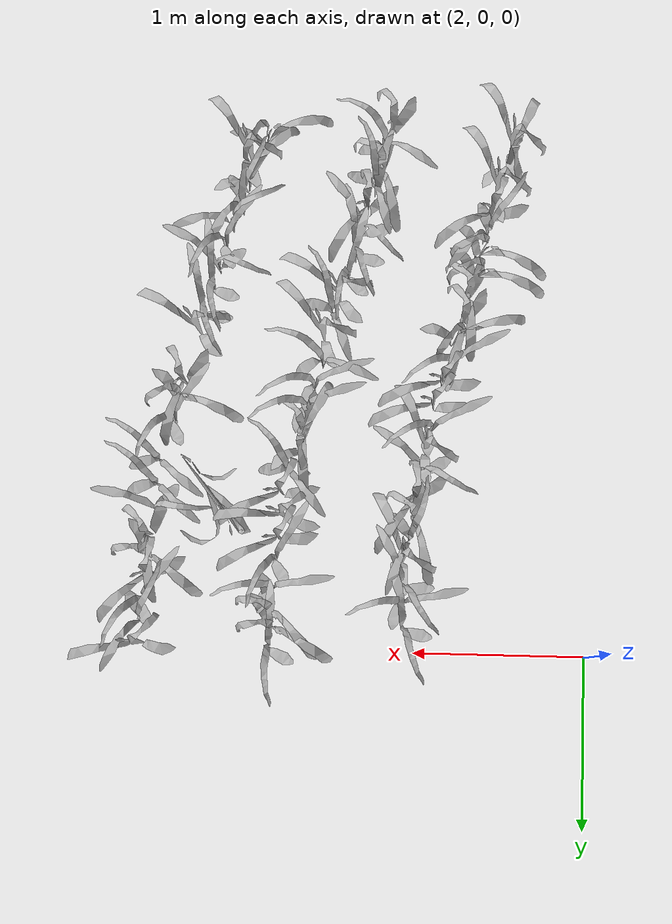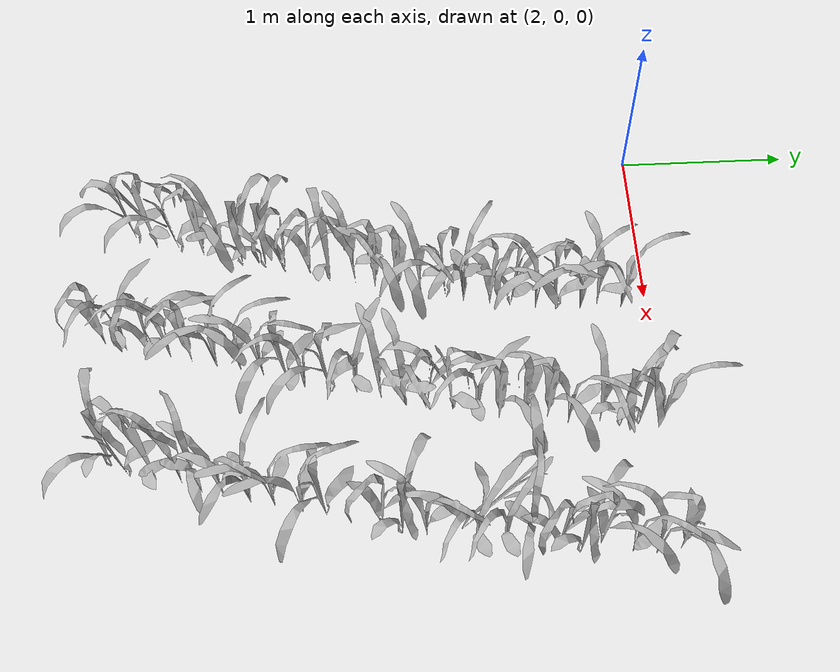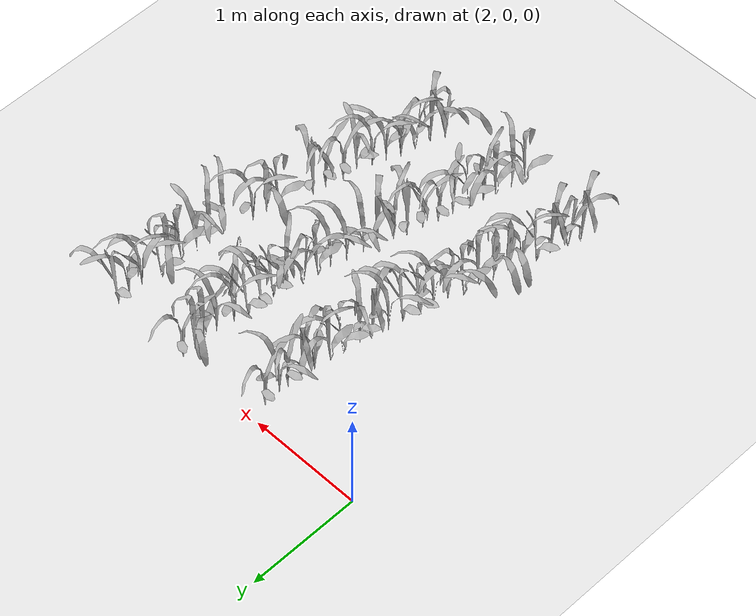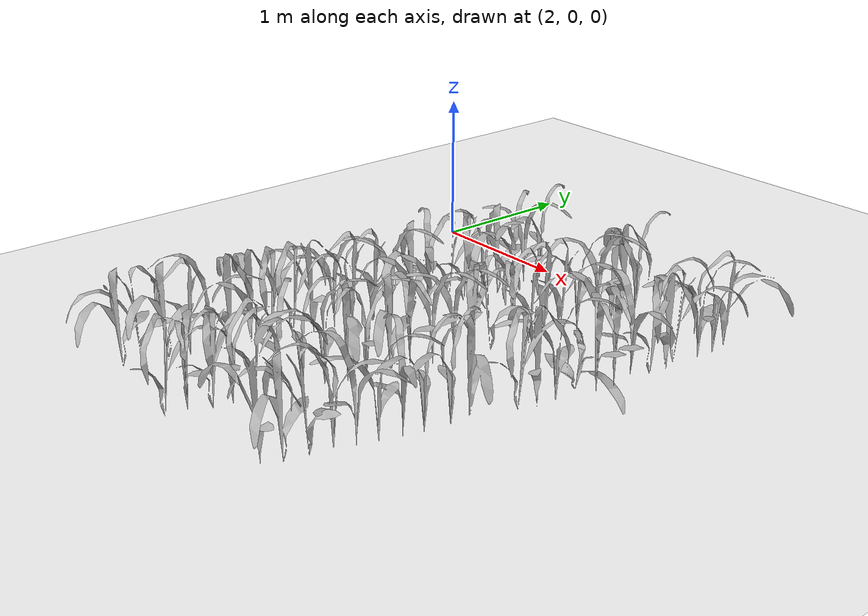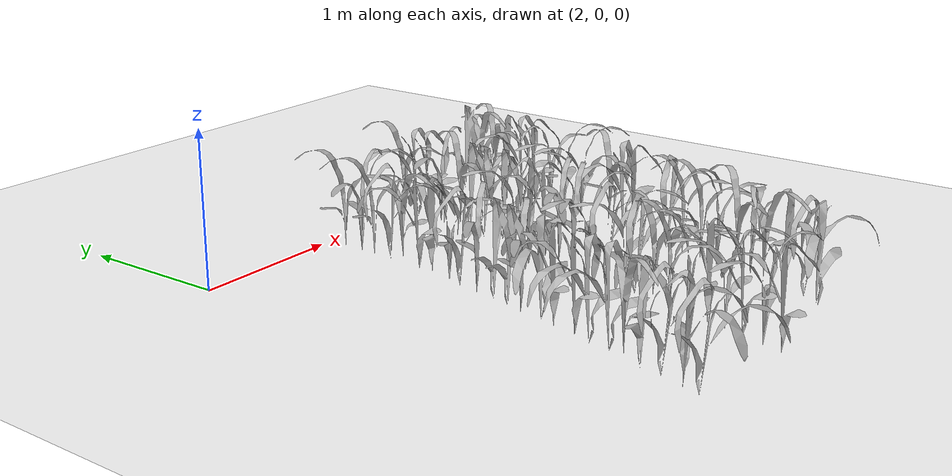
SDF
<sdf version="1.7">
 <world name="default">
  <model name="maize_01_0645">
   <pose>2.47391 -2.99059 -0.000245 -1.2e-05 -1.4e-05 -0.288015</pose>
   <link name="maize_01_link">
    <inertial>
     <pose>0 0 0.01 0 -0 0</pose>
     <mass>0.3</mass>
     <inertia>
      <ixx>0.00334167</ixx>
      <ixy>0</ixy>
      <ixz>0</ixz>
      <iyy>0.00334167</iyy>
      <iyz>0</iyz>
      <izz>1.66667e-05</izz>
     </inertia>
     <pose>0 0 0.1 0 -0 0</pose>
    </inertial>
    <visual name="visual">
     <geometry>
      <mesh><uri>model://maize_01/meshes/maize_01.dae</uri><scale>0.683166 0.683166 0.683166</scale></mesh>
     </geometry>
    </visual>
   </link>
   <static>0</static>
  </model>
  <model name="maize_01_0646">
   <pose>2.50804 -2.87897 -0.000245 -1.2e-05 1.4e-05 -1.16809</pose>
   <link name="maize_01_link">
    <inertial>
     <pose>0 0 0.01 0 -0 0</pose>
     <mass>0.3</mass>
     <inertia>
      <ixx>0.00334167</ixx>
      <ixy>0</ixy>
      <ixz>0</ixz>
      <iyy>0.00334167</iyy>
      <iyz>0</iyz>
      <izz>1.66667e-05</izz>
     </inertia>
     <pose>0 0 0.1 0 -0 0</pose>
    </inertial>
    <visual name="visual">
     <geometry>
      <mesh><uri>model://maize_01/meshes/maize_01.dae</uri><scale>0.683166 0.683166 0.683166</scale></mesh>
     </geometry>
    </visual>
   </link>
   <static>0</static>
  </model>
  <model name="maize_01_0647">
   <pose>2.55788 -2.73225 1e-06 -3e-06 -0.000156 -0.248137</pose>
   <link name="maize_01_link">
    <inertial>
     <pose>0 0 0.01 0 -0 0</pose>
     <mass>0.3</mass>
     <inertia>
      <ixx>0.00334167</ixx>
      <ixy>0</ixy>
      <ixz>0</ixz>
      <iyy>0.00334167</iyy>
      <iyz>0</iyz>
      <izz>1.66667e-05</izz>
     </inertia>
     <pose>0 0 0.1 0 -0 0</pose>
    </inertial>
    <visual name="visual">
     <geometry>
      <mesh><uri>model://maize_01/meshes/maize_01.dae</uri><scale>0.683166 0.683166 0.683166</scale></mesh>
     </geometry>
    </visual>
   </link>
   <static>0</static>
  </model>
  <model name="maize_01_0648">
   <pose>2.58697 -2.59587 1e-06 -0.000156 -3e-06 1.3779</pose>
   <link name="maize_01_link">
    <inertial>
     <pose>0 0 0.01 0 -0 0</pose>
     <mass>0.3</mass>
     <inertia>
      <ixx>0.00334167</ixx>
      <ixy>0</ixy>
      <ixz>0</ixz>
      <iyy>0.00334167</iyy>
      <iyz>0</iyz>
      <izz>1.66667e-05</izz>
     </inertia>
     <pose>0 0 0.1 0 -0 0</pose>
    </inertial>
    <visual name="visual">
     <geometry>
      <mesh><uri>model://maize_01/meshes/maize_01.dae</uri><scale>0.683166 0.683166 0.683166</scale></mesh>
     </geometry>
    </visual>
   </link>
   <static>0</static>
  </model>
  <model name="maize_02_0649">
   <pose>2.62665 -2.47219 -0 -5e-06 2.8e-05 3.04369</pose>
   <link name="maize_02_link">
    <inertial>
     <pose>0 0 0.01 0 -0 0</pose>
     <mass>0.3</mass>
     <inertia>
      <ixx>0.00334167</ixx>
      <ixy>0</ixy>
      <ixz>0</ixz>
      <iyy>0.00334167</iyy>
      <iyz>0</iyz>
      <izz>1.66667e-05</izz>
     </inertia>
     <pose>0 0 0.1 0 -0 0</pose>
    </inertial>
    <visual name="visual">
     <geometry>
      <mesh><uri>model://maize_02/meshes/maize_02.dae</uri><scale>0.683166 0.683166 0.683166</scale></mesh>
     </geometry>
    </visual>
   </link>
   <static>0</static>
  </model>
  <model name="maize_01_0650">
   <pose>2.66848 -2.35744 -1e-06 6e-06 -8.6e-05 -2.79073</pose>
   <link name="maize_01_link">
    <inertial>
     <pose>0 0 0.01 0 -0 0</pose>
     <mass>0.3</mass>
     <inertia>
      <ixx>0.00334167</ixx>
      <ixy>0</ixy>
      <ixz>0</ixz>
      <iyy>0.00334167</iyy>
      <iyz>0</iyz>
      <izz>1.66667e-05</izz>
     </inertia>
     <pose>0 0 0.1 0 -0 0</pose>
    </inertial>
    <visual name="visual">
     <geometry>
      <mesh><uri>model://maize_01/meshes/maize_01.dae</uri><scale>0.683166 0.683166 0.683166</scale></mesh>
     </geometry>
    </visual>
   </link>
   <static>0</static>
  </model>
  <model name="maize_01_0651">
   <pose>2.69057 -2.2193 -0 -2.8e-05 -5e-06 -2.70683</pose>
   <link name="maize_01_link">
    <inertial>
     <pose>0 0 0.01 0 -0 0</pose>
     <mass>0.3</mass>
     <inertia>
      <ixx>0.00334167</ixx>
      <ixy>0</ixy>
      <ixz>0</ixz>
      <iyy>0.00334167</iyy>
      <iyz>0</iyz>
      <izz>1.66667e-05</izz>
     </inertia>
     <pose>0 0 0.1 0 -0 0</pose>
    </inertial>
    <visual name="visual">
     <geometry>
      <mesh><uri>model://maize_01/meshes/maize_01.dae</uri><scale>0.683166 0.683166 0.683166</scale></mesh>
     </geometry>
    </visual>
   </link>
   <static>0</static>
  </model>
  <model name="maize_01_0652">
   <pose>2.73337 -2.10397 -0 -4.8e-05 6e-06 2.39037</pose>
   <link name="maize_01_link">
    <inertial>
     <pose>0 0 0.01 0 -0 0</pose>
     <mass>0.3</mass>
     <inertia>
      <ixx>0.00334167</ixx>
      <ixy>0</ixy>
      <ixz>0</ixz>
      <iyy>0.00334167</iyy>
      <iyz>0</iyz>
      <izz>1.66667e-05</izz>
     </inertia>
     <pose>0 0 0.1 0 -0 0</pose>
    </inertial>
    <visual name="visual">
     <geometry>
      <mesh><uri>model://maize_01/meshes/maize_01.dae</uri><scale>0.683166 0.683166 0.683166</scale></mesh>
     </geometry>
    </visual>
   </link>
   <static>0</static>
  </model>
  <model name="maize_01_0653">
   <pose>2.75227 -1.9554 1e-06 3e-06 -0.000156 2.13792</pose>
   <link name="maize_01_link">
    <inertial>
     <pose>0 0 0.01 0 -0 0</pose>
     <mass>0.3</mass>
     <inertia>
      <ixx>0.00334167</ixx>
      <ixy>0</ixy>
      <ixz>0</ixz>
      <iyy>0.00334167</iyy>
      <iyz>0</iyz>
      <izz>1.66667e-05</izz>
     </inertia>
     <pose>0 0 0.1 0 -0 0</pose>
    </inertial>
    <visual name="visual">
     <geometry>
      <mesh><uri>model://maize_01/meshes/maize_01.dae</uri><scale>0.683166 0.683166 0.683166</scale></mesh>
     </geometry>
    </visual>
   </link>
   <static>0</static>
  </model>
  <model name="maize_01_0654">
   <pose>2.80399 -1.8354 -0 -5e-06 -2.8e-05 -2.12283</pose>
   <link name="maize_01_link">
    <inertial>
     <pose>0 0 0.01 0 -0 0</pose>
     <mass>0.3</mass>
     <inertia>
      <ixx>0.00334167</ixx>
      <ixy>0</ixy>
      <ixz>0</ixz>
      <iyy>0.00334167</iyy>
      <iyz>0</iyz>
      <izz>1.66667e-05</izz>
     </inertia>
     <pose>0 0 0.1 0 -0 0</pose>
    </inertial>
    <visual name="visual">
     <geometry>
      <mesh><uri>model://maize_01/meshes/maize_01.dae</uri><scale>0.683166 0.683166 0.683166</scale></mesh>
     </geometry>
    </visual>
   </link>
   <static>0</static>
  </model>
  <model name="maize_02_0655">
   <pose>2.81904 -1.68879 -0 -6e-06 -4.8e-05 -0.498576</pose>
   <link name="maize_02_link">
    <inertial>
     <pose>0 0 0.01 0 -0 0</pose>
     <mass>0.3</mass>
     <inertia>
      <ixx>0.00334167</ixx>
      <ixy>0</ixy>
      <ixz>0</ixz>
      <iyy>0.00334167</iyy>
      <iyz>0</iyz>
      <izz>1.66667e-05</izz>
     </inertia>
     <pose>0 0 0.1 0 -0 0</pose>
    </inertial>
    <visual name="visual">
     <geometry>
      <mesh><uri>model://maize_02/meshes/maize_02.dae</uri><scale>0.683166 0.683166 0.683166</scale></mesh>
     </geometry>
    </visual>
   </link>
   <static>0</static>
  </model>
  <model name="maize_01_0656">
   <pose>2.85694 -1.5755 -0 -5e-06 -2.8e-05 1.17843</pose>
   <link name="maize_01_link">
    <inertial>
     <pose>0 0 0.01 0 -0 0</pose>
     <mass>0.3</mass>
     <inertia>
      <ixx>0.00334167</ixx>
      <ixy>0</ixy>
      <ixz>0</ixz>
      <iyy>0.00334167</iyy>
      <iyz>0</iyz>
      <izz>1.66667e-05</izz>
     </inertia>
     <pose>0 0 0.1 0 -0 0</pose>
    </inertial>
    <visual name="visual">
     <geometry>
      <mesh><uri>model://maize_01/meshes/maize_01.dae</uri><scale>0.683166 0.683166 0.683166</scale></mesh>
     </geometry>
    </visual>
   </link>
   <static>0</static>
  </model>
  <model name="maize_01_0657">
   <pose>2.90529 -1.44266 -0 2.8e-05 5e-06 1.13864</pose>
   <link name="maize_01_link">
    <inertial>
     <pose>0 0 0.01 0 -0 0</pose>
     <mass>0.3</mass>
     <inertia>
      <ixx>0.00334167</ixx>
      <ixy>0</ixy>
      <ixz>0</ixz>
      <iyy>0.00334167</iyy>
      <iyz>0</iyz>
      <izz>1.66667e-05</izz>
     </inertia>
     <pose>0 0 0.1 0 -0 0</pose>
    </inertial>
    <visual name="visual">
     <geometry>
      <mesh><uri>model://maize_01/meshes/maize_01.dae</uri><scale>0.683166 0.683166 0.683166</scale></mesh>
     </geometry>
    </visual>
   </link>
   <static>0</static>
  </model>
  <model name="maize_02_0658">
   <pose>2.92102 -1.30557 -0 2.8e-05 -5e-06 -0.524198</pose>
   <link name="maize_02_link">
    <inertial>
     <pose>0 0 0.01 0 -0 0</pose>
     <mass>0.3</mass>
     <inertia>
      <ixx>0.00334167</ixx>
      <ixy>0</ixy>
      <ixz>0</ixz>
      <iyy>0.00334167</iyy>
      <iyz>0</iyz>
      <izz>1.66667e-05</izz>
     </inertia>
     <pose>0 0 0.1 0 -0 0</pose>
    </inertial>
    <visual name="visual">
     <geometry>
      <mesh><uri>model://maize_02/meshes/maize_02.dae</uri><scale>0.683166 0.683166 0.683166</scale></mesh>
     </geometry>
    </visual>
   </link>
   <static>0</static>
  </model>
  <model name="maize_01_0659">
   <pose>2.95058 -1.16104 -0.000245 1.2e-05 -1.4e-05 -0.324395</pose>
   <link name="maize_01_link">
    <inertial>
     <pose>0 0 0.01 0 -0 0</pose>
     <mass>0.3</mass>
     <inertia>
      <ixx>0.00334167</ixx>
      <ixy>0</ixy>
      <ixz>0</ixz>
      <iyy>0.00334167</iyy>
      <iyz>0</iyz>
      <izz>1.66667e-05</izz>
     </inertia>
     <pose>0 0 0.1 0 -0 0</pose>
    </inertial>
    <visual name="visual">
     <geometry>
      <mesh><uri>model://maize_01/meshes/maize_01.dae</uri><scale>0.683166 0.683166 0.683166</scale></mesh>
     </geometry>
    </visual>
   </link>
   <static>0</static>
  </model>
  <model name="maize_02_0660">
   <pose>2.98062 -1.05942 -0 2.8e-05 -5e-06 1.56657</pose>
   <link name="maize_02_link">
    <inertial>
     <pose>0 0 0.01 0 -0 0</pose>
     <mass>0.3</mass>
     <inertia>
      <ixx>0.00334167</ixx>
      <ixy>0</ixy>
      <ixz>0</ixz>
      <iyy>0.00334167</iyy>
      <iyz>0</iyz>
      <izz>1.66667e-05</izz>
     </inertia>
     <pose>0 0 0.1 0 -0 0</pose>
    </inertial>
    <visual name="visual">
     <geometry>
      <mesh><uri>model://maize_02/meshes/maize_02.dae</uri><scale>0.683166 0.683166 0.683166</scale></mesh>
     </geometry>
    </visual>
   </link>
   <static>0</static>
  </model>
  <model name="maize_01_0661">
   <pose>3.01016 -0.908229 1e-06 -3e-06 -0.000156 1.7754</pose>
   <link name="maize_01_link">
    <inertial>
     <pose>0 0 0.01 0 -0 0</pose>
     <mass>0.3</mass>
     <inertia>
      <ixx>0.00334167</ixx>
      <ixy>0</ixy>
      <ixz>0</ixz>
      <iyy>0.00334167</iyy>
      <iyz>0</iyz>
      <izz>1.66667e-05</izz>
     </inertia>
     <pose>0 0 0.1 0 -0 0</pose>
    </inertial>
    <visual name="visual">
     <geometry>
      <mesh><uri>model://maize_01/meshes/maize_01.dae</uri><scale>0.683166 0.683166 0.683166</scale></mesh>
     </geometry>
    </visual>
   </link>
   <static>0</static>
  </model>
  <model name="maize_01_0662">
   <pose>3.02877 -0.788028 -0 5e-06 -2.8e-05 2.59903</pose>
   <link name="maize_01_link">
    <inertial>
     <pose>0 0 0.01 0 -0 0</pose>
     <mass>0.3</mass>
     <inertia>
      <ixx>0.00334167</ixx>
      <ixy>0</ixy>
      <ixz>0</ixz>
      <iyy>0.00334167</iyy>
      <iyz>0</iyz>
      <izz>1.66667e-05</izz>
     </inertia>
     <pose>0 0 0.1 0 -0 0</pose>
    </inertial>
    <visual name="visual">
     <geometry>
      <mesh><uri>model://maize_01/meshes/maize_01.dae</uri><scale>0.683166 0.683166 0.683166</scale></mesh>
     </geometry>
    </visual>
   </link>
   <static>0</static>
  </model>
  <model name="maize_02_0663">
   <pose>3.05144 -0.643482 -1e-06 8.6e-05 -6e-06 -2.88875</pose>
   <link name="maize_02_link">
    <inertial>
     <pose>0 0 0.01 0 -0 0</pose>
     <mass>0.3</mass>
     <inertia>
      <ixx>0.00334167</ixx>
      <ixy>0</ixy>
      <ixz>0</ixz>
      <iyy>0.00334167</iyy>
      <iyz>0</iyz>
      <izz>1.66667e-05</izz>
     </inertia>
     <pose>0 0 0.1 0 -0 0</pose>
    </inertial>
    <visual name="visual">
     <geometry>
      <mesh><uri>model://maize_02/meshes/maize_02.dae</uri><scale>0.683166 0.683166 0.683166</scale></mesh>
     </geometry>
    </visual>
   </link>
   <static>0</static>
  </model>
  <model name="maize_01_0664">
   <pose>3.06642 -0.528044 -0 2.8e-05 -5e-06 -0.338148</pose>
   <link name="maize_01_link">
    <inertial>
     <pose>0 0 0.01 0 -0 0</pose>
     <mass>0.3</mass>
     <inertia>
      <ixx>0.00334167</ixx>
      <ixy>0</ixy>
      <ixz>0</ixz>
      <iyy>0.00334167</iyy>
      <iyz>0</iyz>
      <izz>1.66667e-05</izz>
     </inertia>
     <pose>0 0 0.1 0 -0 0</pose>
    </inertial>
    <visual name="visual">
     <geometry>
      <mesh><uri>model://maize_01/meshes/maize_01.dae</uri><scale>0.683166 0.683166 0.683166</scale></mesh>
     </geometry>
    </visual>
   </link>
   <static>0</static>
  </model>
  <model name="maize_02_0665">
   <pose>3.07352 -0.387233 -1e-06 8.9e-05 -6e-06 1.09519</pose>
   <link name="maize_02_link">
    <inertial>
     <pose>0 0 0.01 0 -0 0</pose>
     <mass>0.3</mass>
     <inertia>
      <ixx>0.00334167</ixx>
      <ixy>0</ixy>
      <ixz>0</ixz>
      <iyy>0.00334167</iyy>
      <iyz>0</iyz>
      <izz>1.66667e-05</izz>
     </inertia>
     <pose>0 0 0.1 0 -0 0</pose>
    </inertial>
    <visual name="visual">
     <geometry>
      <mesh><uri>model://maize_02/meshes/maize_02.dae</uri><scale>0.683166 0.683166 0.683166</scale></mesh>
     </geometry>
    </visual>
   </link>
   <static>0</static>
  </model>
  <model name="maize_02_0666">
   <pose>3.06526 -0.288751 -1e-06 -8.9e-05 -6e-06 -0.767193</pose>
   <link name="maize_02_link">
    <inertial>
     <pose>0 0 0.01 0 -0 0</pose>
     <mass>0.3</mass>
     <inertia>
      <ixx>0.00334167</ixx>
      <ixy>0</ixy>
      <ixz>0</ixz>
      <iyy>0.00334167</iyy>
      <iyz>0</iyz>
      <izz>1.66667e-05</izz>
     </inertia>
     <pose>0 0 0.1 0 -0 0</pose>
    </inertial>
    <visual name="visual">
     <geometry>
      <mesh><uri>model://maize_02/meshes/maize_02.dae</uri><scale>0.683166 0.683166 0.683166</scale></mesh>
     </geometry>
    </visual>
   </link>
   <static>0</static>
  </model>
  <model name="maize_02_0667">
   <pose>3.07101 -0.146767 -1e-06 6e-06 -8.3e-05 0.841255</pose>
   <link name="maize_02_link">
    <inertial>
     <pose>0 0 0.01 0 -0 0</pose>
     <mass>0.3</mass>
     <inertia>
      <ixx>0.00334167</ixx>
      <ixy>0</ixy>
      <ixz>0</ixz>
      <iyy>0.00334167</iyy>
      <iyz>0</iyz>
      <izz>1.66667e-05</izz>
     </inertia>
     <pose>0 0 0.1 0 -0 0</pose>
    </inertial>
    <visual name="visual">
     <geometry>
      <mesh><uri>model://maize_02/meshes/maize_02.dae</uri><scale>0.683166 0.683166 0.683166</scale></mesh>
     </geometry>
    </visual>
   </link>
   <static>0</static>
  </model>
  <model name="maize_01_0721">
   <pose>3.18786 -3.11386 1e-06 0.000156 3e-06 2.14138</pose>
   <link name="maize_01_link">
    <inertial>
     <pose>0 0 0.01 0 -0 0</pose>
     <mass>0.3</mass>
     <inertia>
      <ixx>0.00334167</ixx>
      <ixy>0</ixy>
      <ixz>0</ixz>
      <iyy>0.00334167</iyy>
      <iyz>0</iyz>
      <izz>1.66667e-05</izz>
     </inertia>
     <pose>0 0 0.1 0 -0 0</pose>
    </inertial>
    <visual name="visual">
     <geometry>
      <mesh><uri>model://maize_01/meshes/maize_01.dae</uri><scale>0.683166 0.683166 0.683166</scale></mesh>
     </geometry>
    </visual>
   </link>
   <static>0</static>
  </model>
  <model name="maize_02_0722">
   <pose>3.22432 -2.99179 -0 -5e-06 -2.8e-05 -1.56354</pose>
   <link name="maize_02_link">
    <inertial>
     <pose>0 0 0.01 0 -0 0</pose>
     <mass>0.3</mass>
     <inertia>
      <ixx>0.00334167</ixx>
      <ixy>0</ixy>
      <ixz>0</ixz>
      <iyy>0.00334167</iyy>
      <iyz>0</iyz>
      <izz>1.66667e-05</izz>
     </inertia>
     <pose>0 0 0.1 0 -0 0</pose>
    </inertial>
    <visual name="visual">
     <geometry>
      <mesh><uri>model://maize_02/meshes/maize_02.dae</uri><scale>0.683166 0.683166 0.683166</scale></mesh>
     </geometry>
    </visual>
   </link>
   <static>0</static>
  </model>
  <model name="maize_01_0723">
   <pose>3.2635 -2.85219 -0.000245 1.2e-05 -1.4e-05 2.61262</pose>
   <link name="maize_01_link">
    <inertial>
     <pose>0 0 0.01 0 -0 0</pose>
     <mass>0.3</mass>
     <inertia>
      <ixx>0.00334167</ixx>
      <ixy>0</ixy>
      <ixz>0</ixz>
      <iyy>0.00334167</iyy>
      <iyz>0</iyz>
      <izz>1.66667e-05</izz>
     </inertia>
     <pose>0 0 0.1 0 -0 0</pose>
    </inertial>
    <visual name="visual">
     <geometry>
      <mesh><uri>model://maize_01/meshes/maize_01.dae</uri><scale>0.683166 0.683166 0.683166</scale></mesh>
     </geometry>
    </visual>
   </link>
   <static>0</static>
  </model>
  <model name="maize_02_0724">
   <pose>3.28693 -2.73572 1e-06 -3e-06 0.000156 -2.28261</pose>
   <link name="maize_02_link">
    <inertial>
     <pose>0 0 0.01 0 -0 0</pose>
     <mass>0.3</mass>
     <inertia>
      <ixx>0.00334167</ixx>
      <ixy>0</ixy>
      <ixz>0</ixz>
      <iyy>0.00334167</iyy>
      <iyz>0</iyz>
      <izz>1.66667e-05</izz>
     </inertia>
     <pose>0 0 0.1 0 -0 0</pose>
    </inertial>
    <visual name="visual">
     <geometry>
      <mesh><uri>model://maize_02/meshes/maize_02.dae</uri><scale>0.683166 0.683166 0.683166</scale></mesh>
     </geometry>
    </visual>
   </link>
   <static>0</static>
  </model>
  <model name="maize_01_0725">
   <pose>3.32518 -2.61409 -0 -5e-06 -2.8e-05 1.80027</pose>
   <link name="maize_01_link">
    <inertial>
     <pose>0 0 0.01 0 -0 0</pose>
     <mass>0.3</mass>
     <inertia>
      <ixx>0.00334167</ixx>
      <ixy>0</ixy>
      <ixz>0</ixz>
      <iyy>0.00334167</iyy>
      <iyz>0</iyz>
      <izz>1.66667e-05</izz>
     </inertia>
     <pose>0 0 0.1 0 -0 0</pose>
    </inertial>
    <visual name="visual">
     <geometry>
      <mesh><uri>model://maize_01/meshes/maize_01.dae</uri><scale>0.683166 0.683166 0.683166</scale></mesh>
     </geometry>
    </visual>
   </link>
   <static>0</static>
  </model>
  <model name="maize_02_0726">
   <pose>3.36149 -2.47074 -0.000245 -1.2e-05 1.4e-05 1.26536</pose>
   <link name="maize_02_link">
    <inertial>
     <pose>0 0 0.01 0 -0 0</pose>
     <mass>0.3</mass>
     <inertia>
      <ixx>0.00334167</ixx>
      <ixy>0</ixy>
      <ixz>0</ixz>
      <iyy>0.00334167</iyy>
      <iyz>0</iyz>
      <izz>1.66667e-05</izz>
     </inertia>
     <pose>0 0 0.1 0 -0 0</pose>
    </inertial>
    <visual name="visual">
     <geometry>
      <mesh><uri>model://maize_02/meshes/maize_02.dae</uri><scale>0.683166 0.683166 0.683166</scale></mesh>
     </geometry>
    </visual>
   </link>
   <static>0</static>
  </model>
  <model name="maize_02_0727">
   <pose>3.38985 -2.33503 -0.000245 1.4e-05 1.2e-05 0.820451</pose>
   <link name="maize_02_link">
    <inertial>
     <pose>0 0 0.01 0 -0 0</pose>
     <mass>0.3</mass>
     <inertia>
      <ixx>0.00334167</ixx>
      <ixy>0</ixy>
      <ixz>0</ixz>
      <iyy>0.00334167</iyy>
      <iyz>0</iyz>
      <izz>1.66667e-05</izz>
     </inertia>
     <pose>0 0 0.1 0 -0 0</pose>
    </inertial>
    <visual name="visual">
     <geometry>
      <mesh><uri>model://maize_02/meshes/maize_02.dae</uri><scale>0.683166 0.683166 0.683166</scale></mesh>
     </geometry>
    </visual>
   </link>
   <static>0</static>
  </model>
  <model name="maize_02_0728">
   <pose>3.43326 -2.20604 -1e-06 -8.6e-05 6e-06 0.338388</pose>
   <link name="maize_02_link">
    <inertial>
     <pose>0 0 0.01 0 -0 0</pose>
     <mass>0.3</mass>
     <inertia>
      <ixx>0.00334167</ixx>
      <ixy>0</ixy>
      <ixz>0</ixz>
      <iyy>0.00334167</iyy>
      <iyz>0</iyz>
      <izz>1.66667e-05</izz>
     </inertia>
     <pose>0 0 0.1 0 -0 0</pose>
    </inertial>
    <visual name="visual">
     <geometry>
      <mesh><uri>model://maize_02/meshes/maize_02.dae</uri><scale>0.683166 0.683166 0.683166</scale></mesh>
     </geometry>
    </visual>
   </link>
   <static>0</static>
  </model>
  <model name="maize_01_0729">
   <pose>3.46877 -2.06901 -0 5e-06 -2.8e-05 0.273221</pose>
   <link name="maize_01_link">
    <inertial>
     <pose>0 0 0.01 0 -0 0</pose>
     <mass>0.3</mass>
     <inertia>
      <ixx>0.00334167</ixx>
      <ixy>0</ixy>
      <ixz>0</ixz>
      <iyy>0.00334167</iyy>
      <iyz>0</iyz>
      <izz>1.66667e-05</izz>
     </inertia>
     <pose>0 0 0.1 0 -0 0</pose>
    </inertial>
    <visual name="visual">
     <geometry>
      <mesh><uri>model://maize_01/meshes/maize_01.dae</uri><scale>0.683166 0.683166 0.683166</scale></mesh>
     </geometry>
    </visual>
   </link>
   <static>0</static>
  </model>
  <model name="maize_02_0730">
   <pose>3.52312 -1.97062 -0 -2.8e-05 5e-06 -2.19573</pose>
   <link name="maize_02_link">
    <inertial>
     <pose>0 0 0.01 0 -0 0</pose>
     <mass>0.3</mass>
     <inertia>
      <ixx>0.00334167</ixx>
      <ixy>0</ixy>
      <ixz>0</ixz>
      <iyy>0.00334167</iyy>
      <iyz>0</iyz>
      <izz>1.66667e-05</izz>
     </inertia>
     <pose>0 0 0.1 0 -0 0</pose>
    </inertial>
    <visual name="visual">
     <geometry>
      <mesh><uri>model://maize_02/meshes/maize_02.dae</uri><scale>0.683166 0.683166 0.683166</scale></mesh>
     </geometry>
    </visual>
   </link>
   <static>0</static>
  </model>
  <model name="maize_01_0731">
   <pose>3.55863 -1.82457 -0 5e-06 2.8e-05 -0.034143</pose>
   <link name="maize_01_link">
    <inertial>
     <pose>0 0 0.01 0 -0 0</pose>
     <mass>0.3</mass>
     <inertia>
      <ixx>0.00334167</ixx>
      <ixy>0</ixy>
      <ixz>0</ixz>
      <iyy>0.00334167</iyy>
      <iyz>0</iyz>
      <izz>1.66667e-05</izz>
     </inertia>
     <pose>0 0 0.1 0 -0 0</pose>
    </inertial>
    <visual name="visual">
     <geometry>
      <mesh><uri>model://maize_01/meshes/maize_01.dae</uri><scale>0.683166 0.683166 0.683166</scale></mesh>
     </geometry>
    </visual>
   </link>
   <static>0</static>
  </model>
  <model name="maize_02_0732">
   <pose>3.56964 -1.6806 -0 -2.8e-05 -5e-06 -1.38487</pose>
   <link name="maize_02_link">
    <inertial>
     <pose>0 0 0.01 0 -0 0</pose>
     <mass>0.3</mass>
     <inertia>
      <ixx>0.00334167</ixx>
      <ixy>0</ixy>
      <ixz>0</ixz>
      <iyy>0.00334167</iyy>
      <iyz>0</iyz>
      <izz>1.66667e-05</izz>
     </inertia>
     <pose>0 0 0.1 0 -0 0</pose>
    </inertial>
    <visual name="visual">
     <geometry>
      <mesh><uri>model://maize_02/meshes/maize_02.dae</uri><scale>0.683166 0.683166 0.683166</scale></mesh>
     </geometry>
    </visual>
   </link>
   <static>0</static>
  </model>
  <model name="maize_02_0733">
   <pose>3.61522 -1.54676 -1e-06 -6e-06 8.9e-05 -0.648513</pose>
   <link name="maize_02_link">
    <inertial>
     <pose>0 0 0.01 0 -0 0</pose>
     <mass>0.3</mass>
     <inertia>
      <ixx>0.00334167</ixx>
      <ixy>0</ixy>
      <ixz>0</ixz>
      <iyy>0.00334167</iyy>
      <iyz>0</iyz>
      <izz>1.66667e-05</izz>
     </inertia>
     <pose>0 0 0.1 0 -0 0</pose>
    </inertial>
    <visual name="visual">
     <geometry>
      <mesh><uri>model://maize_02/meshes/maize_02.dae</uri><scale>0.683166 0.683166 0.683166</scale></mesh>
     </geometry>
    </visual>
   </link>
   <static>0</static>
  </model>
  <model name="maize_02_0734">
   <pose>3.65855 -1.41467 -0.000245 -1.4e-05 1.2e-05 -0.662627</pose>
   <link name="maize_02_link">
    <inertial>
     <pose>0 0 0.01 0 -0 0</pose>
     <mass>0.3</mass>
     <inertia>
      <ixx>0.00334167</ixx>
      <ixy>0</ixy>
      <ixz>0</ixz>
      <iyy>0.00334167</iyy>
      <iyz>0</iyz>
      <izz>1.66667e-05</izz>
     </inertia>
     <pose>0 0 0.1 0 -0 0</pose>
    </inertial>
    <visual name="visual">
     <geometry>
      <mesh><uri>model://maize_02/meshes/maize_02.dae</uri><scale>0.683166 0.683166 0.683166</scale></mesh>
     </geometry>
    </visual>
   </link>
   <static>0</static>
  </model>
  <model name="maize_01_0735">
   <pose>3.68213 -1.29892 -1e-06 -8.9e-05 6e-06 2.42816</pose>
   <link name="maize_01_link">
    <inertial>
     <pose>0 0 0.01 0 -0 0</pose>
     <mass>0.3</mass>
     <inertia>
      <ixx>0.00334167</ixx>
      <ixy>0</ixy>
      <ixz>0</ixz>
      <iyy>0.00334167</iyy>
      <iyz>0</iyz>
      <izz>1.66667e-05</izz>
     </inertia>
     <pose>0 0 0.1 0 -0 0</pose>
    </inertial>
    <visual name="visual">
     <geometry>
      <mesh><uri>model://maize_01/meshes/maize_01.dae</uri><scale>0.683166 0.683166 0.683166</scale></mesh>
     </geometry>
    </visual>
   </link>
   <static>0</static>
  </model>
  <model name="maize_01_0736">
   <pose>3.69361 -1.15596 -1e-06 -8.9e-05 6e-06 -1.22579</pose>
   <link name="maize_01_link">
    <inertial>
     <pose>0 0 0.01 0 -0 0</pose>
     <mass>0.3</mass>
     <inertia>
      <ixx>0.00334167</ixx>
      <ixy>0</ixy>
      <ixz>0</ixz>
      <iyy>0.00334167</iyy>
      <iyz>0</iyz>
      <izz>1.66667e-05</izz>
     </inertia>
     <pose>0 0 0.1 0 -0 0</pose>
    </inertial>
    <visual name="visual">
     <geometry>
      <mesh><uri>model://maize_01/meshes/maize_01.dae</uri><scale>0.683166 0.683166 0.683166</scale></mesh>
     </geometry>
    </visual>
   </link>
   <static>0</static>
  </model>
  <model name="maize_02_0737">
   <pose>3.74613 -1.0247 -0.000245 -1.2e-05 1.4e-05 -1.87852</pose>
   <link name="maize_02_link">
    <inertial>
     <pose>0 0 0.01 0 -0 0</pose>
     <mass>0.3</mass>
     <inertia>
      <ixx>0.00334167</ixx>
      <ixy>0</ixy>
      <ixz>0</ixz>
      <iyy>0.00334167</iyy>
      <iyz>0</iyz>
      <izz>1.66667e-05</izz>
     </inertia>
     <pose>0 0 0.1 0 -0 0</pose>
    </inertial>
    <visual name="visual">
     <geometry>
      <mesh><uri>model://maize_02/meshes/maize_02.dae</uri><scale>0.683166 0.683166 0.683166</scale></mesh>
     </geometry>
    </visual>
   </link>
   <static>0</static>
  </model>
  <model name="maize_01_0738">
   <pose>3.77402 -0.908058 -0 6e-06 -4.8e-05 1.28926</pose>
   <link name="maize_01_link">
    <inertial>
     <pose>0 0 0.01 0 -0 0</pose>
     <mass>0.3</mass>
     <inertia>
      <ixx>0.00334167</ixx>
      <ixy>0</ixy>
      <ixz>0</ixz>
      <iyy>0.00334167</iyy>
      <iyz>0</iyz>
      <izz>1.66667e-05</izz>
     </inertia>
     <pose>0 0 0.1 0 -0 0</pose>
    </inertial>
    <visual name="visual">
     <geometry>
      <mesh><uri>model://maize_01/meshes/maize_01.dae</uri><scale>0.683166 0.683166 0.683166</scale></mesh>
     </geometry>
    </visual>
   </link>
   <static>0</static>
  </model>
  <model name="maize_01_0739">
   <pose>3.75613 -0.767743 1e-06 -3e-06 -0.000156 0.862744</pose>
   <link name="maize_01_link">
    <inertial>
     <pose>0 0 0.01 0 -0 0</pose>
     <mass>0.3</mass>
     <inertia>
      <ixx>0.00334167</ixx>
      <ixy>0</ixy>
      <ixz>0</ixz>
      <iyy>0.00334167</iyy>
      <iyz>0</iyz>
      <izz>1.66667e-05</izz>
     </inertia>
     <pose>0 0 0.1 0 -0 0</pose>
    </inertial>
    <visual name="visual">
     <geometry>
      <mesh><uri>model://maize_01/meshes/maize_01.dae</uri><scale>0.683166 0.683166 0.683166</scale></mesh>
     </geometry>
    </visual>
   </link>
   <static>0</static>
  </model>
  <model name="maize_01_0740">
   <pose>3.776 -0.64239 -0.000245 -1.2e-05 -1.4e-05 1.28361</pose>
   <link name="maize_01_link">
    <inertial>
     <pose>0 0 0.01 0 -0 0</pose>
     <mass>0.3</mass>
     <inertia>
      <ixx>0.00334167</ixx>
      <ixy>0</ixy>
      <ixz>0</ixz>
      <iyy>0.00334167</iyy>
      <iyz>0</iyz>
      <izz>1.66667e-05</izz>
     </inertia>
     <pose>0 0 0.1 0 -0 0</pose>
    </inertial>
    <visual name="visual">
     <geometry>
      <mesh><uri>model://maize_01/meshes/maize_01.dae</uri><scale>0.683166 0.683166 0.683166</scale></mesh>
     </geometry>
    </visual>
   </link>
   <static>0</static>
  </model>
  <model name="maize_02_0741">
   <pose>3.80937 -0.52861 -0 -2.8e-05 -5e-06 0.075303</pose>
   <link name="maize_02_link">
    <inertial>
     <pose>0 0 0.01 0 -0 0</pose>
     <mass>0.3</mass>
     <inertia>
      <ixx>0.00334167</ixx>
      <ixy>0</ixy>
      <ixz>0</ixz>
      <iyy>0.00334167</iyy>
      <iyz>0</iyz>
      <izz>1.66667e-05</izz>
     </inertia>
     <pose>0 0 0.1 0 -0 0</pose>
    </inertial>
    <visual name="visual">
     <geometry>
      <mesh><uri>model://maize_02/meshes/maize_02.dae</uri><scale>0.683166 0.683166 0.683166</scale></mesh>
     </geometry>
    </visual>
   </link>
   <static>0</static>
  </model>
  <model name="maize_02_0742">
   <pose>3.82106 -0.356742 1e-06 3e-06 0.000156 -0.82096</pose>
   <link name="maize_02_link">
    <inertial>
     <pose>0 0 0.01 0 -0 0</pose>
     <mass>0.3</mass>
     <inertia>
      <ixx>0.00334167</ixx>
      <ixy>0</ixy>
      <ixz>0</ixz>
      <iyy>0.00334167</iyy>
      <iyz>0</iyz>
      <izz>1.66667e-05</izz>
     </inertia>
     <pose>0 0 0.1 0 -0 0</pose>
    </inertial>
    <visual name="visual">
     <geometry>
      <mesh><uri>model://maize_02/meshes/maize_02.dae</uri><scale>0.683166 0.683166 0.683166</scale></mesh>
     </geometry>
    </visual>
   </link>
   <static>0</static>
  </model>
  <model name="maize_01_0743">
   <pose>3.84513 -0.246509 -1e-06 -8.3e-05 6e-06 3.12385</pose>
   <link name="maize_01_link">
    <inertial>
     <pose>0 0 0.01 0 -0 0</pose>
     <mass>0.3</mass>
     <inertia>
      <ixx>0.00334167</ixx>
      <ixy>0</ixy>
      <ixz>0</ixz>
      <iyy>0.00334167</iyy>
      <iyz>0</iyz>
      <izz>1.66667e-05</izz>
     </inertia>
     <pose>0 0 0.1 0 -0 0</pose>
    </inertial>
    <visual name="visual">
     <geometry>
      <mesh><uri>model://maize_01/meshes/maize_01.dae</uri><scale>0.683166 0.683166 0.683166</scale></mesh>
     </geometry>
    </visual>
   </link>
   <static>0</static>
  </model>
  <model name="maize_01_0744">
   <pose>3.83893 -0.141967 -0 -2.8e-05 5e-06 -2.87555</pose>
   <link name="maize_01_link">
    <inertial>
     <pose>0 0 0.01 0 -0 0</pose>
     <mass>0.3</mass>
     <inertia>
      <ixx>0.00334167</ixx>
      <ixy>0</ixy>
      <ixz>0</ixz>
      <iyy>0.00334167</iyy>
      <iyz>0</iyz>
      <izz>1.66667e-05</izz>
     </inertia>
     <pose>0 0 0.1 0 -0 0</pose>
    </inertial>
    <visual name="visual">
     <geometry>
      <mesh><uri>model://maize_01/meshes/maize_01.dae</uri><scale>0.683166 0.683166 0.683166</scale></mesh>
     </geometry>
    </visual>
   </link>
   <static>0</static>
  </model>
  <model name="maize_02_0745">
   <pose>3.83527 -0.021631 -0.000245 -1.2e-05 -1.4e-05 0.600821</pose>
   <link name="maize_02_link">
    <inertial>
     <pose>0 0 0.01 0 -0 0</pose>
     <mass>0.3</mass>
     <inertia>
      <ixx>0.00334167</ixx>
      <ixy>0</ixy>
      <ixz>0</ixz>
      <iyy>0.00334167</iyy>
      <iyz>0</iyz>
      <izz>1.66667e-05</izz>
     </inertia>
     <pose>0 0 0.1 0 -0 0</pose>
    </inertial>
    <visual name="visual">
     <geometry>
      <mesh><uri>model://maize_02/meshes/maize_02.dae</uri><scale>0.683166 0.683166 0.683166</scale></mesh>
     </geometry>
    </visual>
   </link>
   <static>0</static>
  </model>
  <model name="maize_01_0799">
   <pose>3.95339 -2.99376 -0 -5e-06 -2.8e-05 -2.13205</pose>
   <link name="maize_01_link">
    <inertial>
     <pose>0 0 0.01 0 -0 0</pose>
     <mass>0.3</mass>
     <inertia>
      <ixx>0.00334167</ixx>
      <ixy>0</ixy>
      <ixz>0</ixz>
      <iyy>0.00334167</iyy>
      <iyz>0</iyz>
      <izz>1.66667e-05</izz>
     </inertia>
     <pose>0 0 0.1 0 -0 0</pose>
    </inertial>
    <visual name="visual">
     <geometry>
      <mesh><uri>model://maize_01/meshes/maize_01.dae</uri><scale>0.683166 0.683166 0.683166</scale></mesh>
     </geometry>
    </visual>
   </link>
   <static>0</static>
  </model>
  <model name="maize_01_0800">
   <pose>4.01823 -2.89609 1e-06 0.000156 3e-06 -0.125834</pose>
   <link name="maize_01_link">
    <inertial>
     <pose>0 0 0.01 0 -0 0</pose>
     <mass>0.3</mass>
     <inertia>
      <ixx>0.00334167</ixx>
      <ixy>0</ixy>
      <ixz>0</ixz>
      <iyy>0.00334167</iyy>
      <iyz>0</iyz>
      <izz>1.66667e-05</izz>
     </inertia>
     <pose>0 0 0.1 0 -0 0</pose>
    </inertial>
    <visual name="visual">
     <geometry>
      <mesh><uri>model://maize_01/meshes/maize_01.dae</uri><scale>0.683166 0.683166 0.683166</scale></mesh>
     </geometry>
    </visual>
   </link>
   <static>0</static>
  </model>
  <model name="maize_01_0801">
   <pose>4.04417 -2.74889 -1e-06 -8.6e-05 6e-06 -1.581</pose>
   <link name="maize_01_link">
    <inertial>
     <pose>0 0 0.01 0 -0 0</pose>
     <mass>0.3</mass>
     <inertia>
      <ixx>0.00334167</ixx>
      <ixy>0</ixy>
      <ixz>0</ixz>
      <iyy>0.00334167</iyy>
      <iyz>0</iyz>
      <izz>1.66667e-05</izz>
     </inertia>
     <pose>0 0 0.1 0 -0 0</pose>
    </inertial>
    <visual name="visual">
     <geometry>
      <mesh><uri>model://maize_01/meshes/maize_01.dae</uri><scale>0.683166 0.683166 0.683166</scale></mesh>
     </geometry>
    </visual>
   </link>
   <static>0</static>
  </model>
  <model name="maize_02_0802">
   <pose>4.07383 -2.61137 -0 2.8e-05 -5e-06 -3.04735</pose>
   <link name="maize_02_link">
    <inertial>
     <pose>0 0 0.01 0 -0 0</pose>
     <mass>0.3</mass>
     <inertia>
      <ixx>0.00334167</ixx>
      <ixy>0</ixy>
      <ixz>0</ixz>
      <iyy>0.00334167</iyy>
      <iyz>0</iyz>
      <izz>1.66667e-05</izz>
     </inertia>
     <pose>0 0 0.1 0 -0 0</pose>
    </inertial>
    <visual name="visual">
     <geometry>
      <mesh><uri>model://maize_02/meshes/maize_02.dae</uri><scale>0.683166 0.683166 0.683166</scale></mesh>
     </geometry>
    </visual>
   </link>
   <static>0</static>
  </model>
  <model name="maize_02_0803">
   <pose>4.13123 -2.50279 -0 5e-06 2.8e-05 2.4977</pose>
   <link name="maize_02_link">
    <inertial>
     <pose>0 0 0.01 0 -0 0</pose>
     <mass>0.3</mass>
     <inertia>
      <ixx>0.00334167</ixx>
      <ixy>0</ixy>
      <ixz>0</ixz>
      <iyy>0.00334167</iyy>
      <iyz>0</iyz>
      <izz>1.66667e-05</izz>
     </inertia>
     <pose>0 0 0.1 0 -0 0</pose>
    </inertial>
    <visual name="visual">
     <geometry>
      <mesh><uri>model://maize_02/meshes/maize_02.dae</uri><scale>0.683166 0.683166 0.683166</scale></mesh>
     </geometry>
    </visual>
   </link>
   <static>0</static>
  </model>
  <model name="maize_02_0804">
   <pose>4.16457 -2.38026 -0 2.8e-05 -5e-06 -0.035157</pose>
   <link name="maize_02_link">
    <inertial>
     <pose>0 0 0.01 0 -0 0</pose>
     <mass>0.3</mass>
     <inertia>
      <ixx>0.00334167</ixx>
      <ixy>0</ixy>
      <ixz>0</ixz>
      <iyy>0.00334167</iyy>
      <iyz>0</iyz>
      <izz>1.66667e-05</izz>
     </inertia>
     <pose>0 0 0.1 0 -0 0</pose>
    </inertial>
    <visual name="visual">
     <geometry>
      <mesh><uri>model://maize_02/meshes/maize_02.dae</uri><scale>0.683166 0.683166 0.683166</scale></mesh>
     </geometry>
    </visual>
   </link>
   <static>0</static>
  </model>
  <model name="maize_02_0805">
   <pose>4.19902 -2.24307 -1e-06 -6e-06 8.9e-05 1.70385</pose>
   <link name="maize_02_link">
    <inertial>
     <pose>0 0 0.01 0 -0 0</pose>
     <mass>0.3</mass>
     <inertia>
      <ixx>0.00334167</ixx>
      <ixy>0</ixy>
      <ixz>0</ixz>
      <iyy>0.00334167</iyy>
      <iyz>0</iyz>
      <izz>1.66667e-05</izz>
     </inertia>
     <pose>0 0 0.1 0 -0 0</pose>
    </inertial>
    <visual name="visual">
     <geometry>
      <mesh><uri>model://maize_02/meshes/maize_02.dae</uri><scale>0.683166 0.683166 0.683166</scale></mesh>
     </geometry>
    </visual>
   </link>
   <static>0</static>
  </model>
  <model name="maize_02_0806">
   <pose>4.22447 -2.11556 -0.000245 -1.4e-05 -1.2e-05 0.71901</pose>
   <link name="maize_02_link">
    <inertial>
     <pose>0 0 0.01 0 -0 0</pose>
     <mass>0.3</mass>
     <inertia>
      <ixx>0.00334167</ixx>
      <ixy>0</ixy>
      <ixz>0</ixz>
      <iyy>0.00334167</iyy>
      <iyz>0</iyz>
      <izz>1.66667e-05</izz>
     </inertia>
     <pose>0 0 0.1 0 -0 0</pose>
    </inertial>
    <visual name="visual">
     <geometry>
      <mesh><uri>model://maize_02/meshes/maize_02.dae</uri><scale>0.683166 0.683166 0.683166</scale></mesh>
     </geometry>
    </visual>
   </link>
   <static>0</static>
  </model>
  <model name="maize_02_0807">
   <pose>4.27098 -1.96609 -0 -2.8e-05 -5e-06 0.884022</pose>
   <link name="maize_02_link">
    <inertial>
     <pose>0 0 0.01 0 -0 0</pose>
     <mass>0.3</mass>
     <inertia>
      <ixx>0.00334167</ixx>
      <ixy>0</ixy>
      <ixz>0</ixz>
      <iyy>0.00334167</iyy>
      <iyz>0</iyz>
      <izz>1.66667e-05</izz>
     </inertia>
     <pose>0 0 0.1 0 -0 0</pose>
    </inertial>
    <visual name="visual">
     <geometry>
      <mesh><uri>model://maize_02/meshes/maize_02.dae</uri><scale>0.683166 0.683166 0.683166</scale></mesh>
     </geometry>
    </visual>
   </link>
   <static>0</static>
  </model>
  <model name="maize_01_0808">
   <pose>4.28662 -1.84557 -0 2.8e-05 5e-06 0.308021</pose>
   <link name="maize_01_link">
    <inertial>
     <pose>0 0 0.01 0 -0 0</pose>
     <mass>0.3</mass>
     <inertia>
      <ixx>0.00334167</ixx>
      <ixy>0</ixy>
      <ixz>0</ixz>
      <iyy>0.00334167</iyy>
      <iyz>0</iyz>
      <izz>1.66667e-05</izz>
     </inertia>
     <pose>0 0 0.1 0 -0 0</pose>
    </inertial>
    <visual name="visual">
     <geometry>
      <mesh><uri>model://maize_01/meshes/maize_01.dae</uri><scale>0.683166 0.683166 0.683166</scale></mesh>
     </geometry>
    </visual>
   </link>
   <static>0</static>
  </model>
  <model name="maize_01_0810">
   <pose>4.36828 -1.55393 -0.000245 1.2e-05 -1.4e-05 2.12643</pose>
   <link name="maize_01_link">
    <inertial>
     <pose>0 0 0.01 0 -0 0</pose>
     <mass>0.3</mass>
     <inertia>
      <ixx>0.00334167</ixx>
      <ixy>0</ixy>
      <ixz>0</ixz>
      <iyy>0.00334167</iyy>
      <iyz>0</iyz>
      <izz>1.66667e-05</izz>
     </inertia>
     <pose>0 0 0.1 0 -0 0</pose>
    </inertial>
    <visual name="visual">
     <geometry>
      <mesh><uri>model://maize_01/meshes/maize_01.dae</uri><scale>0.683166 0.683166 0.683166</scale></mesh>
     </geometry>
    </visual>
   </link>
   <static>0</static>
  </model>
  <model name="maize_01_0811">
   <pose>4.41221 -1.44758 1e-06 -0.000156 3e-06 -2.72084</pose>
   <link name="maize_01_link">
    <inertial>
     <pose>0 0 0.01 0 -0 0</pose>
     <mass>0.3</mass>
     <inertia>
      <ixx>0.00334167</ixx>
      <ixy>0</ixy>
      <ixz>0</ixz>
      <iyy>0.00334167</iyy>
      <iyz>0</iyz>
      <izz>1.66667e-05</izz>
     </inertia>
     <pose>0 0 0.1 0 -0 0</pose>
    </inertial>
    <visual name="visual">
     <geometry>
      <mesh><uri>model://maize_01/meshes/maize_01.dae</uri><scale>0.683166 0.683166 0.683166</scale></mesh>
     </geometry>
    </visual>
   </link>
   <static>0</static>
  </model>
  <model name="maize_02_0812">
   <pose>4.42904 -1.32297 -1e-06 6e-06 -7.9e-05 -0.02592</pose>
   <link name="maize_02_link">
    <inertial>
     <pose>0 0 0.01 0 -0 0</pose>
     <mass>0.3</mass>
     <inertia>
      <ixx>0.00334167</ixx>
      <ixy>0</ixy>
      <ixz>0</ixz>
      <iyy>0.00334167</iyy>
      <iyz>0</iyz>
      <izz>1.66667e-05</izz>
     </inertia>
     <pose>0 0 0.1 0 -0 0</pose>
    </inertial>
    <visual name="visual">
     <geometry>
      <mesh><uri>model://maize_02/meshes/maize_02.dae</uri><scale>0.683166 0.683166 0.683166</scale></mesh>
     </geometry>
    </visual>
   </link>
   <static>0</static>
  </model>
  <model name="maize_01_0813">
   <pose>4.4086 -1.14502 0.009953 1.5708 1.56603 -2.3981</pose>
   <link name="maize_01_link">
    <inertial>
     <pose>0 0 0.01 0 -0 0</pose>
     <mass>0.3</mass>
     <inertia>
      <ixx>0.00334167</ixx>
      <ixy>0</ixy>
      <ixz>0</ixz>
      <iyy>0.00334167</iyy>
      <iyz>0</iyz>
      <izz>1.66667e-05</izz>
     </inertia>
     <pose>0 0 0.1 0 -0 0</pose>
    </inertial>
    <visual name="visual">
     <geometry>
      <mesh><uri>model://maize_01/meshes/maize_01.dae</uri><scale>0.683166 0.683166 0.683166</scale></mesh>
     </geometry>
    </visual>
   </link>
   <static>0</static>
  </model>
  <model name="maize_02_0814">
   <pose>4.4967 -1.06533 -0 -5e-06 2.8e-05 -1.65248</pose>
   <link name="maize_02_link">
    <inertial>
     <pose>0 0 0.01 0 -0 0</pose>
     <mass>0.3</mass>
     <inertia>
      <ixx>0.00334167</ixx>
      <ixy>0</ixy>
      <ixz>0</ixz>
      <iyy>0.00334167</iyy>
      <iyz>0</iyz>
      <izz>1.66667e-05</izz>
     </inertia>
     <pose>0 0 0.1 0 -0 0</pose>
    </inertial>
    <visual name="visual">
     <geometry>
      <mesh><uri>model://maize_02/meshes/maize_02.dae</uri><scale>0.683166 0.683166 0.683166</scale></mesh>
     </geometry>
    </visual>
   </link>
   <static>0</static>
  </model>
  <model name="maize_02_0815">
   <pose>4.50072 -0.922385 -0 2.8e-05 5e-06 -1.68302</pose>
   <link name="maize_02_link">
    <inertial>
     <pose>0 0 0.01 0 -0 0</pose>
     <mass>0.3</mass>
     <inertia>
      <ixx>0.00334167</ixx>
      <ixy>0</ixy>
      <ixz>0</ixz>
      <iyy>0.00334167</iyy>
      <iyz>0</iyz>
      <izz>1.66667e-05</izz>
     </inertia>
     <pose>0 0 0.1 0 -0 0</pose>
    </inertial>
    <visual name="visual">
     <geometry>
      <mesh><uri>model://maize_02/meshes/maize_02.dae</uri><scale>0.683166 0.683166 0.683166</scale></mesh>
     </geometry>
    </visual>
   </link>
   <static>0</static>
  </model>
  <model name="maize_02_0816">
   <pose>4.51167 -0.799374 1e-06 3e-06 -0.000156 1.9921</pose>
   <link name="maize_02_link">
    <inertial>
     <pose>0 0 0.01 0 -0 0</pose>
     <mass>0.3</mass>
     <inertia>
      <ixx>0.00334167</ixx>
      <ixy>0</ixy>
      <ixz>0</ixz>
      <iyy>0.00334167</iyy>
      <iyz>0</iyz>
      <izz>1.66667e-05</izz>
     </inertia>
     <pose>0 0 0.1 0 -0 0</pose>
    </inertial>
    <visual name="visual">
     <geometry>
      <mesh><uri>model://maize_02/meshes/maize_02.dae</uri><scale>0.683166 0.683166 0.683166</scale></mesh>
     </geometry>
    </visual>
   </link>
   <static>0</static>
  </model>
  <model name="maize_01_0817">
   <pose>4.53924 -0.655949 -0 -5e-06 -2.8e-05 2.46054</pose>
   <link name="maize_01_link">
    <inertial>
     <pose>0 0 0.01 0 -0 0</pose>
     <mass>0.3</mass>
     <inertia>
      <ixx>0.00334167</ixx>
      <ixy>0</ixy>
      <ixz>0</ixz>
      <iyy>0.00334167</iyy>
      <iyz>0</iyz>
      <izz>1.66667e-05</izz>
     </inertia>
     <pose>0 0 0.1 0 -0 0</pose>
    </inertial>
    <visual name="visual">
     <geometry>
      <mesh><uri>model://maize_01/meshes/maize_01.dae</uri><scale>0.683166 0.683166 0.683166</scale></mesh>
     </geometry>
    </visual>
   </link>
   <static>0</static>
  </model>
  <model name="maize_01_0818">
   <pose>4.5596 -0.537569 -0 -5e-06 -2.8e-05 -3.00435</pose>
   <link name="maize_01_link">
    <inertial>
     <pose>0 0 0.01 0 -0 0</pose>
     <mass>0.3</mass>
     <inertia>
      <ixx>0.00334167</ixx>
      <ixy>0</ixy>
      <ixz>0</ixz>
      <iyy>0.00334167</iyy>
      <iyz>0</iyz>
      <izz>1.66667e-05</izz>
     </inertia>
     <pose>0 0 0.1 0 -0 0</pose>
    </inertial>
    <visual name="visual">
     <geometry>
      <mesh><uri>model://maize_01/meshes/maize_01.dae</uri><scale>0.683166 0.683166 0.683166</scale></mesh>
     </geometry>
    </visual>
   </link>
   <static>0</static>
  </model>
  <model name="maize_01_0819">
   <pose>4.51723 -0.430113 -0 5e-06 2.8e-05 1.59183</pose>
   <link name="maize_01_link">
    <inertial>
     <pose>0 0 0.01 0 -0 0</pose>
     <mass>0.3</mass>
     <inertia>
      <ixx>0.00334167</ixx>
      <ixy>0</ixy>
      <ixz>0</ixz>
      <iyy>0.00334167</iyy>
      <iyz>0</iyz>
      <izz>1.66667e-05</izz>
     </inertia>
     <pose>0 0 0.1 0 -0 0</pose>
    </inertial>
    <visual name="visual">
     <geometry>
      <mesh><uri>model://maize_01/meshes/maize_01.dae</uri><scale>0.683166 0.683166 0.683166</scale></mesh>
     </geometry>
    </visual>
   </link>
   <static>0</static>
  </model>
  <model name="maize_02_0820">
   <pose>4.56858 -0.270884 -0 5e-06 -2.8e-05 -0.046274</pose>
   <link name="maize_02_link">
    <inertial>
     <pose>0 0 0.01 0 -0 0</pose>
     <mass>0.3</mass>
     <inertia>
      <ixx>0.00334167</ixx>
      <ixy>0</ixy>
      <ixz>0</ixz>
      <iyy>0.00334167</iyy>
      <iyz>0</iyz>
      <izz>1.66667e-05</izz>
     </inertia>
     <pose>0 0 0.1 0 -0 0</pose>
    </inertial>
    <visual name="visual">
     <geometry>
      <mesh><uri>model://maize_02/meshes/maize_02.dae</uri><scale>0.683166 0.683166 0.683166</scale></mesh>
     </geometry>
    </visual>
   </link>
   <static>0</static>
  </model>
  <model name="maize_02_0821">
   <pose>4.58392 -0.14944 -0 -5e-06 -2.8e-05 -3.05285</pose>
   <link name="maize_02_link">
    <inertial>
     <pose>0 0 0.01 0 -0 0</pose>
     <mass>0.3</mass>
     <inertia>
      <ixx>0.00334167</ixx>
      <ixy>0</ixy>
      <ixz>0</ixz>
      <iyy>0.00334167</iyy>
      <iyz>0</iyz>
      <izz>1.66667e-05</izz>
     </inertia>
     <pose>0 0 0.1 0 -0 0</pose>
    </inertial>
    <visual name="visual">
     <geometry>
      <mesh><uri>model://maize_02/meshes/maize_02.dae</uri><scale>0.683166 0.683166 0.683166</scale></mesh>
     </geometry>
    </visual>
   </link>
   <static>0</static>
  </model>
  <model name="maize_01_0822">
   <pose>4.56466 -0.023149 -1e-06 8.9e-05 -6e-06 1.03205</pose>
   <link name="maize_01_link">
    <inertial>
     <pose>0 0 0.01 0 -0 0</pose>
     <mass>0.3</mass>
     <inertia>
      <ixx>0.00334167</ixx>
      <ixy>0</ixy>
      <ixz>0</ixz>
      <iyy>0.00334167</iyy>
      <iyz>0</iyz>
      <izz>1.66667e-05</izz>
     </inertia>
     <pose>0 0 0.1 0 -0 0</pose>
    </inertial>
    <visual name="visual">
     <geometry>
      <mesh><uri>model://maize_01/meshes/maize_01.dae</uri><scale>0.683166 0.683166 0.683166</scale></mesh>
     </geometry>
    </visual>
   </link>
   <static>0</static>
  </model>
  <model name="ground_plane">
   <static>1</static>
   <link name="link">
    <collision name="collision">
     <geometry><plane><normal>0 0 1</normal><size>100 100</size></plane></geometry>
     <surface>
      <contact><collide_bitmask>65535</collide_bitmask></contact>
      <friction><ode><mu>100</mu><mu2>50</mu2></ode></friction>
     </surface>
    </collision>
    <visual name="visual">
     <cast_shadows>0</cast_shadows>
     <geometry><plane><normal>0 0 1</normal><size>100 100</size></plane></geometry>
     <material>
      <script><uri>file://media/materials/scripts/gazebo.material</uri><name>Gazebo/Grey</name></script>
     </material>
    </visual>
   </link>
   <pose>-13.7732 9.25996 0 0 -0 0</pose>
  </model>
 </world>
</sdf>
